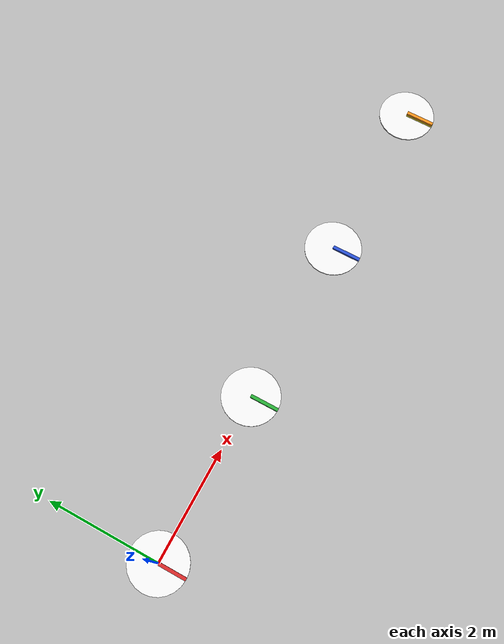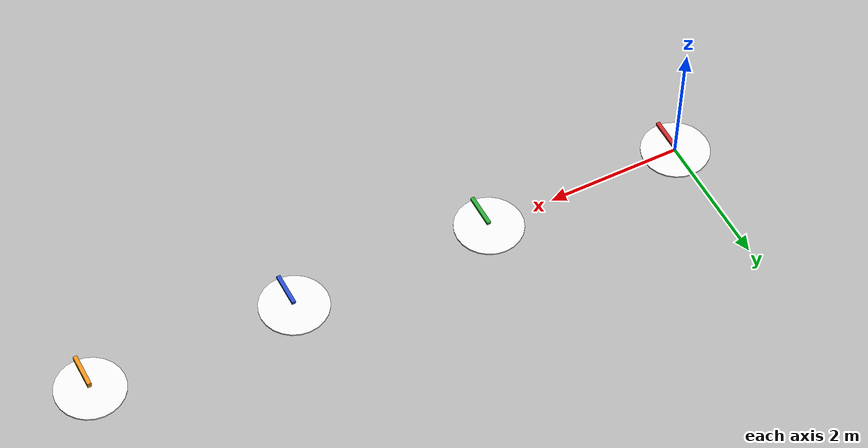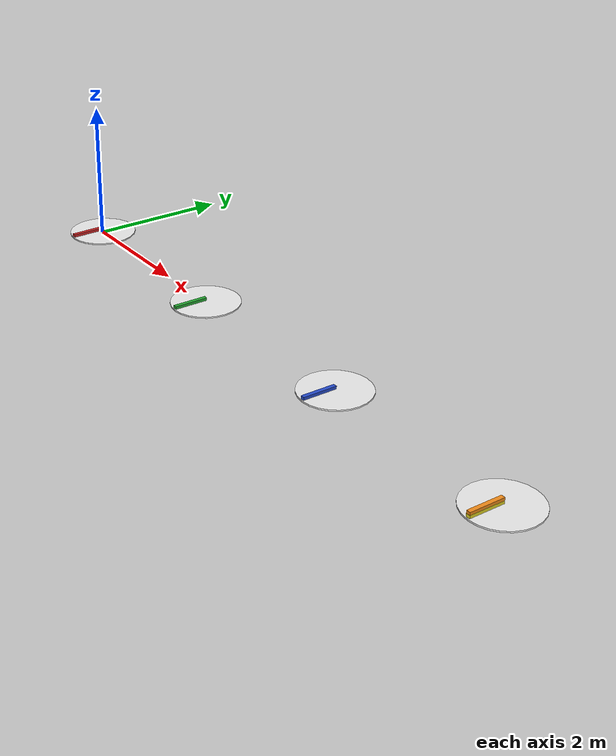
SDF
<?xml version="1.0" ?>
<sdf version="1.6">
  <world name="default">

    <gravity>0 0 0</gravity>
    <gui fullscreen='0'>
      <plugin name='keyboard' filename='libKeyboardGUIPlugin.so'/>
      <camera name='user_camera'>
        <pose frame=''>4.5 0 11 0.000361 1.57 1.57036</pose>
      </camera>
    </gui>

    <include>
      <uri>model://sun</uri>
    </include>

    <model name='position_teleop'>
      <pose>0 0 0.03 -1.57 -0 0</pose>
      <link name='link_1'>
        <pose>0 0.02141 0 0 -0 0</pose>
        <inertial>
          <mass>10</mass>
        </inertial>
        <visual name='visual'>
          <pose>0 0 0 1.57 -0 0</pose>
          <geometry>
            <cylinder>
              <radius>0.5</radius>
              <length>0.02</length>
            </cylinder>
          </geometry>
          <material>
            <lighting>1</lighting>
            <script>
              <uri>file://media/materials/scripts/gazebo.material</uri>
              <name>Gazebo/White</name>
            </script>
          </material>
        </visual>
        <collision name='collision'>
          <pose>0 0 0 1.57 -0 0</pose>
          <geometry>
            <cylinder>
              <radius>0.5</radius>
              <length>0.02</length>
            </cylinder>
          </geometry>
        </collision>
      </link>
      <link name='link_2'>
        <pose>-0 -0.03 -0.25 0 -0 0</pose>
        <inertial>
          <mass>1</mass>
        </inertial>
        <visual name='visual'>
          <geometry>
            <box>
              <size>0.057867 0.042821 0.5</size>
            </box>
          </geometry>
          <material>
            <script>
              <uri>file://media/materials/scripts/gazebo.material</uri>
              <name>Gazebo/Red</name>
            </script>
          </material>
        </visual>
        <collision name='collision'>
          <geometry>
            <box>
              <size>0.057867 0.042821 0.5</size>
            </box>
          </geometry>
        </collision>
      </link>
      <joint name='joint' type='revolute'>
        <parent>link_1</parent>
        <child>link_2</child>
        <pose>0 0 0.25 0 -0 0</pose>
        <axis>
          <xyz>0 1 0</xyz>
        </axis>
      </joint>

      <plugin name='keystojoints' filename='libKeysToJointsPlugin.so'>
        <map key='117' joint='joint' scale='-0.1' type='position' kp='100' ki='0' kd='10'/>
        <map key='106' joint='joint' scale='0.1' type='position' kp='100' ki='0' kd='10'/>
      </plugin>
    </model>

    <model name='velocity_teleop'>
      <pose>3 0 0.03 -1.57 -0 0</pose>
      <link name='link_1'>
        <pose>0 0.02141 0 0 -0 0</pose>
        <inertial>
          <mass>10</mass>
        </inertial>
        <visual name='visual'>
          <pose>0 0 0 1.57 -0 0</pose>
          <geometry>
            <cylinder>
              <radius>0.5</radius>
              <length>0.02</length>
            </cylinder>
          </geometry>
          <material>
            <lighting>1</lighting>
            <script>
              <uri>file://media/materials/scripts/gazebo.material</uri>
              <name>Gazebo/White</name>
            </script>
          </material>
        </visual>
        <collision name='collision'>
          <pose>0 0 0 1.57 -0 0</pose>
          <geometry>
            <cylinder>
              <radius>0.5</radius>
              <length>0.02</length>
            </cylinder>
          </geometry>
        </collision>
      </link>
      <link name='link_2'>
        <pose>-0 -0.03 -0.25 0 -0 0</pose>
        <inertial>
          <mass>1</mass>
        </inertial>
        <visual name='visual'>
          <geometry>
            <box>
              <size>0.057867 0.042821 0.5</size>
            </box>
          </geometry>
          <material>
            <script>
              <uri>file://media/materials/scripts/gazebo.material</uri>
              <name>Gazebo/Green</name>
            </script>
          </material>
        </visual>
        <collision name='collision'>
          <geometry>
            <box>
              <size>0.057867 0.042821 0.5</size>
            </box>
          </geometry>
        </collision>
      </link>
      <joint name='joint' type='revolute'>
        <parent>link_1</parent>
        <child>link_2</child>
        <pose>0 0 0.25 0 -0 0</pose>
        <axis>
          <xyz>0 1 0</xyz>
        </axis>
      </joint>

      <plugin name='keystojoints' filename='libKeysToJointsPlugin.so'>
        <map key='56' joint='joint' scale='-0.3' type='velocity' kp='200' ki='0' kd='0'/>
        <map key='105' joint='joint' scale='0' type='velocity' kp='200' ki='0' kd='0'/>
        <map key='107' joint='joint' scale='0.3' type='velocity' kp='200' ki='0' kd='0'/>
      </plugin>
    </model>

    <model name='force_teleop'>
      <pose>6 0 0.03 -1.57 -0 0</pose>
      <link name='link_1'>
        <pose>0 0.02141 0 0 -0 0</pose>
        <inertial>
          <mass>10</mass>
        </inertial>
        <visual name='visual'>
          <pose>0 0 0 1.57 -0 0</pose>
          <geometry>
            <cylinder>
              <radius>0.5</radius>
              <length>0.02</length>
            </cylinder>
          </geometry>
          <material>
            <lighting>1</lighting>
            <script>
              <uri>file://media/materials/scripts/gazebo.material</uri>
              <name>Gazebo/White</name>
            </script>
          </material>
        </visual>
        <collision name='collision'>
          <pose>0 0 0 1.57 -0 0</pose>
          <geometry>
            <cylinder>
              <radius>0.5</radius>
              <length>0.02</length>
            </cylinder>
          </geometry>
        </collision>
      </link>
      <link name='link_2'>
        <pose>-0 -0.03 -0.25 0 -0 0</pose>
        <inertial>
          <mass>1</mass>
        </inertial>
        <visual name='visual'>
          <geometry>
            <box>
              <size>0.057867 0.042821 0.5</size>
            </box>
          </geometry>
          <material>
            <script>
              <uri>file://media/materials/scripts/gazebo.material</uri>
              <name>Gazebo/Blue</name>
            </script>
          </material>
        </visual>
        <collision name='collision'>
          <geometry>
            <box>
              <size>0.057867 0.042821 0.5</size>
            </box>
          </geometry>
        </collision>
      </link>
      <joint name='joint' type='revolute'>
        <parent>link_1</parent>
        <child>link_2</child>
        <pose>0 0 0.25 0 -0 0</pose>
        <axis>
          <xyz>0 1 0</xyz>
        </axis>
      </joint>

      <plugin name='keystojoints' filename='libKeysToJointsPlugin.so'>
        <map key='111' joint='joint' scale='-1000' type='force'/>
        <map key='108' joint='joint' scale='1000' type='force'/>
      </plugin>
    </model>

    <model name='multiple_teleop'>
      <pose>9 0 0.03 -1.57 -0 0</pose>
      <link name='link_1'>
        <pose>0 0.02141 0 0 -0 0</pose>
        <inertial>
          <mass>10</mass>
        </inertial>
        <visual name='visual'>
          <pose>0 0 0 1.57 -0 0</pose>
          <geometry>
            <cylinder>
              <radius>0.5</radius>
              <length>0.02</length>
            </cylinder>
          </geometry>
          <material>
            <lighting>1</lighting>
            <script>
              <uri>file://media/materials/scripts/gazebo.material</uri>
              <name>Gazebo/White</name>
            </script>
          </material>
        </visual>
        <collision name='collision'>
          <pose>0 0 0 1.57 -0 0</pose>
          <geometry>
            <cylinder>
              <radius>0.5</radius>
              <length>0.02</length>
            </cylinder>
          </geometry>
        </collision>
      </link>
      <link name='link_2'>
        <pose>-0 -0.03 -0.25 0 -0 0</pose>
        <inertial>
          <mass>1</mass>
        </inertial>
        <visual name='visual'>
          <geometry>
            <box>
              <size>0.057867 0.042821 0.5</size>
            </box>
          </geometry>
          <material>
            <script>
              <uri>file://media/materials/scripts/gazebo.material</uri>
              <name>Gazebo/Yellow</name>
            </script>
          </material>
        </visual>
        <collision name='collision'>
          <geometry>
            <box>
              <size>0.057867 0.042821 0.5</size>
            </box>
          </geometry>
        </collision>
      </link>
      <link name='link_3'>
        <pose>-0 -0.07 -0.25 0 -0 0</pose>
        <inertial>
          <mass>1</mass>
        </inertial>
        <visual name='visual'>
          <geometry>
            <box>
              <size>0.057867 0.042821 0.5</size>
            </box>
          </geometry>
          <material>
            <script>
              <uri>file://media/materials/scripts/gazebo.material</uri>
              <name>Gazebo/Orange</name>
            </script>
          </material>
        </visual>
        <collision name='collision'>
          <geometry>
            <box>
              <size>0.057867 0.042821 0.5</size>
            </box>
          </geometry>
        </collision>
      </link>
      <joint name='joint_2' type='revolute'>
        <parent>link_1</parent>
        <child>link_2</child>
        <pose>0 0 0.25 0 -0 0</pose>
        <axis>
          <xyz>0 1 0</xyz>
        </axis>
      </joint>
      <joint name='joint_3' type='revolute'>
        <parent>link_1</parent>
        <child>link_3</child>
        <pose>0 0 0.25 0 -0 0</pose>
        <axis>
          <xyz>0 1 0</xyz>
        </axis>
      </joint>

      <plugin name='keystojoints' filename='libKeysToJointsPlugin.so'>
        <map key='112' joint='joint_2' scale='-0.1' type='position' kp='100' ki='0' kd='10'/>
        <map key='59' joint='joint_2' scale='0.1' type='position' kp='100' ki='0' kd='10'/>

        <map key='112' joint='joint_3' scale='0.1' type='position' kp='100' ki='0' kd='10'/>
        <map key='59' joint='joint_3' scale='-0.1' type='position' kp='100' ki='0' kd='10'/>
      </plugin>
    </model>
  </world>
</sdf>
